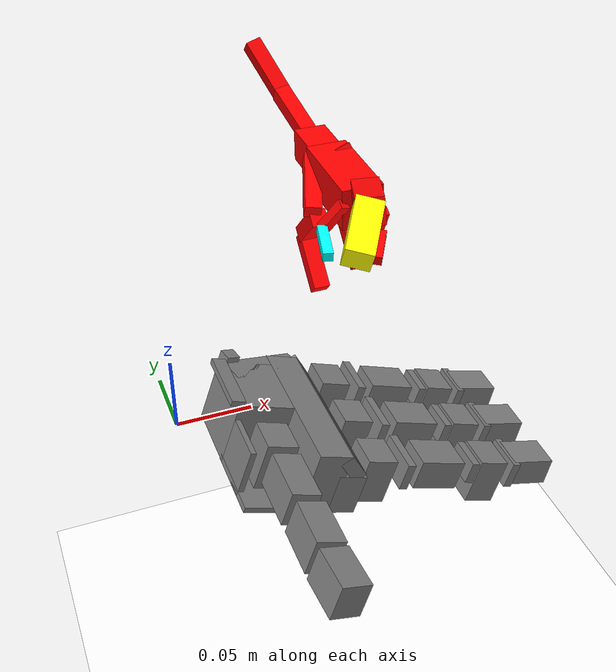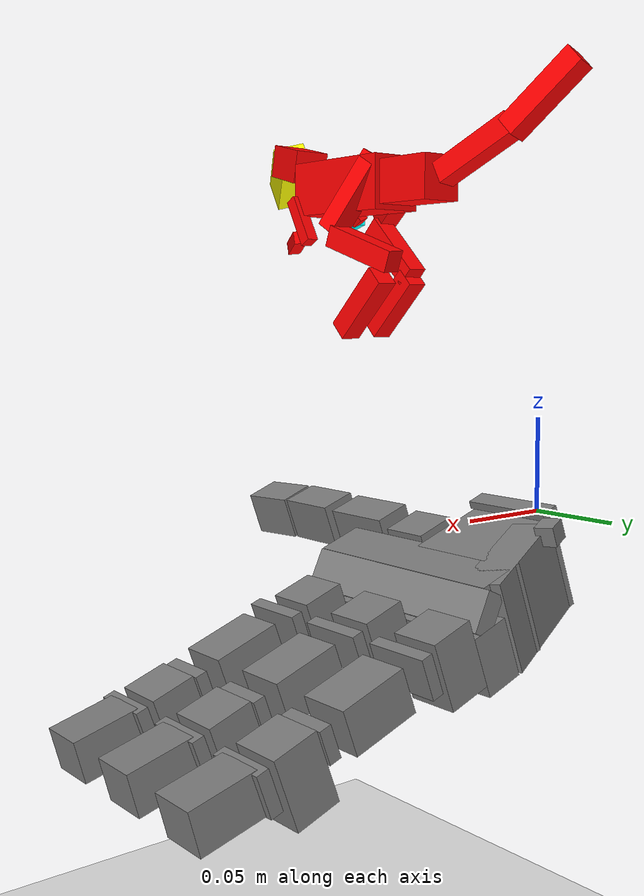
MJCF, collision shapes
<mujoco model="leap_scene">
  <default>
      <mesh maxhullvert="200"/>
  </default>

  <include file="leap_rh_mjx.xml"/>
  <include file="reorientation_allosaurus.xml"/>

  <statistic center="0.15 0 0" extent="0.4" meansize="0.01"/>

  <visual>
    <headlight diffuse=".8 .8 .8" ambient=".2 .2 .2" specular="1 1 1"/>
    <rgba force="1 0 0 1"/>
    <global azimuth="120" elevation="-20"/>
    <map force="0.01" stiffness="500"/>
    <scale forcewidth="0.1" contactwidth="0.5" contactheight="0.2"/>
    <quality shadowsize="8192"/>
  </visual>

  <asset>
    <texture type="skybox" builtin="gradient" rgb1="1 1 1" rgb2="1 1 1" width="800" height="800"/>
    <texture type="2d" name="groundplane" builtin="checker" mark="edge" rgb1="1 1 1" rgb2="1 1 1" markrgb="0 0 0"
      width="300" height="300"/>
    <material name="groundplane" texture="groundplane" texuniform="true" texrepeat="5 5" reflectance="0"/>
  </asset>

  <worldbody>
    <camera name="side" pos="-0.183 0.396 0.296" xyaxes="-0.783 -0.622 -0.000 0.332 -0.419 0.845"/>
    <geom name="floor" pos="0 0 -0.25" size="0 0 0.01" type="plane" material="groundplane" contype="2" conaffinity="2"/>
    <body name="goal" mocap="true" pos="0.325 0.17 0.0475">
    </body>
  </worldbody>

  <sensor>
    <!-- allosaurus. -->
    <framepos name="allosaurus_position" objtype="body" objname="allosaurus"/>
    <framequat name="allosaurus_orientation" objtype="body" objname="allosaurus"/>
    <framelinvel name="allosaurus_linvel" objtype="body" objname="allosaurus"/>
    <frameangvel name="allosaurus_angvel" objtype="body" objname="allosaurus"/>
    <frameangacc name="allosaurus_angacc" objtype="body" objname="allosaurus"/>
    <framezaxis name="allosaurus_upvector" objtype="body" objname="allosaurus"/>

    <!-- hand. -->
    <framepos name="palm_position" objtype="site" objname="grasp_site"/>
    <framepos name="th_tip_position" objtype="site" objname="th_tip" reftype="site" refname="grasp_site"/>
    <framepos name="if_tip_position" objtype="site" objname="if_tip" reftype="site" refname="grasp_site"/>
    <framepos name="mf_tip_position" objtype="site" objname="mf_tip" reftype="site" refname="grasp_site"/>
    <framepos name="rf_tip_position" objtype="site" objname="rf_tip" reftype="site" refname="grasp_site"/>

    <!-- goal. -->
    <framequat name="allosaurus_goal_orientation" objtype="body" objname="goal"/>
    <framezaxis name="allosaurus_goal_upvector" objtype="body" objname="goal"/>
  </sensor>

  <keyframe>
    <key name="home"
      qpos="
      0.8 0 0.8 0.8
      0.8 0 0.8 0.8
      0.8 0 0.8 0.8
      0.8 0.8 0.8 0
      0.1 0.0 0.05 0.810967 -0.00262895 -0.585086 -0.000254303"
      ctrl="
      0.8 0 0.8 0.8
      0.8 0 0.8 0.8
      0.8 0 0.8 0.8
      0.8 0.8 0.8 0" mpos="0.25 0.16 0"
      mquat="1 0 0 0"/>
  </keyframe>
</mujoco>

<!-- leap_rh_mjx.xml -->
<mujoco model="leap_rh">
  <compiler angle="radian" autolimits="true"/>

  <option timestep="0.01" integrator="Euler" iterations="5" ls_iterations="8">
    <flag eulerdamp="disable"/>
  </option>

  <custom>
    <numeric data="30" name="max_contact_points"/>
    <numeric data="12" name="max_geom_pairs"/>
  </custom>

  <asset>
    <material name="black" rgba="0.2 0.2 0.2 1"/>
    <material name="gray" rgba="0.5 0.5 0.5 1"/>
    <mesh name="leap_mount" file="meshes/leap_mount.obj"/>

    <!-- Example path to palm right -->
    <!-- mujoco_playground/external_deps/mujoco_menagerie/leap_hand/assets/palm_right.obj -->
    <!-- original path, incorrect. -->
    <!-- correct path -->
    <mesh name="palm" file="../../../../external_deps/mujoco_menagerie/leap_hand/assets/palm_right.obj"/>
    <mesh name="base" file="../../../../external_deps/mujoco_menagerie/leap_hand/assets/base.obj"/>
    <mesh name="proximal" file="../../../../external_deps/mujoco_menagerie/leap_hand/assets/proximal.obj"/>
    <mesh name="medial" file="../../../../external_deps/mujoco_menagerie/leap_hand/assets/medial.obj"/>
    <mesh name="distal" file="../../../../external_deps/mujoco_menagerie/leap_hand/assets/distal.obj"/>
    <mesh name="tip" file="../../../../external_deps/mujoco_menagerie/leap_hand/assets/tip.obj"/>
    <mesh name="thumb_base" file="../../../../external_deps/mujoco_menagerie/leap_hand/assets/thumb_base.obj"/>
    <mesh name="thumb_proximal" file="../../../../external_deps/mujoco_menagerie/leap_hand/assets/thumb_proximal.obj"/>
    <mesh name="thumb_distal" file="../../../../external_deps/mujoco_menagerie/leap_hand/assets/thumb_distal.obj"/>
    <mesh name="thumb_tip" file="../../../../external_deps/mujoco_menagerie/leap_hand/assets/thumb_tip.obj"/>
  </asset>

  <default>
    <default class="leap_rh">
      <geom group="3" friction="0.2" solref="0.02 1.5" solimp="0.9 0.99 0.001"/>
      <default class="visual">
        <geom group="2" type="mesh" contype="0" conaffinity="0" density="0" material="black"/>
      </default>
      <default class="tip">
        <geom size="0.01 0.012 0.016" pos="-0.0012969 -0.0335524 0.0145207" quat="0.703552 0.709596 -0.0292107 -0.0252203" type="box" friction="0.7 0.05 0.0002" rgba=".5 .5 .5 .3"/>
      </default>
      <default class="thumb_tip">
        <geom size="0.01 0.012 0.016" pos="-0.00127744 -0.0455619 -0.0144774" quat="0.708101 0.705072 -0.0294902 -0.024426" type="box" friction="0.7 0.05 0.0002" rgba=".5 .5 .5 .3"/>
      </default>

      <position kp="3.0" inheritrange="1"/>
      <!-- armature = rotor inertia * gear ratio^2 = 1.7 * 1e-8 * 288*288 = 0.00149376 -->
      <!-- max torque = 0.2196 = 600/1000*0.366 -->
      <!-- frictionloss = rough guess, small ish value -->
      <joint axis="0 0 -1" damping="0.2" armature="0.00149376" actuatorfrcrange="-0.2196 0.2196" frictionloss="0.02"/>

      <default class="mcp">
        <joint range="-0.314 2.23"/>
      </default>
      <default class="rot">
        <joint range="-1.047 1.047"/>
      </default>
      <default class="pip">
        <joint range="-0.506 1.885"/>
      </default>
      <default class="dip">
        <joint range="-0.366 2.042"/>
      </default>
      <default class="thumb_cmc">
        <joint range="-0.349 2.094"/>
      </default>
      <default class="thumb_axl">
        <joint range="-0.349 2.094"/>
      </default>
      <default class="thumb_mcp">
        <joint range="-0.47 2.443"/>
      </default>
      <default class="thumb_ipl">
        <joint range="-1.34 1.88"/>
      </default>

    </default>
  </default>

  <contact>
    <!-- filter the palm from all other finger bodies except the tips -->
    <exclude body1="palm" body2="if_bs"/>
    <exclude body1="palm" body2="mf_bs"/>
    <exclude body1="palm" body2="rf_bs"/>
    <exclude body1="palm" body2="th_mp"/>

    <exclude body1="palm" body2="if_px"/>
    <exclude body1="palm" body2="mf_px"/>
    <exclude body1="palm" body2="rf_px"/>
    <exclude body1="palm" body2="th_bs"/>

    <exclude body1="palm" body2="if_md"/>
    <exclude body1="palm" body2="mf_md"/>
    <exclude body1="palm" body2="rf_md"/>
    <exclude body1="palm" body2="th_px"/>

    <!-- filter the mount from all finger bodies except the tips -->
    <exclude body1="leap_mount" body2="if_bs"/>
    <exclude body1="leap_mount" body2="mf_bs"/>
    <exclude body1="leap_mount" body2="rf_bs"/>
    <exclude body1="leap_mount" body2="th_mp"/>

    <exclude body1="leap_mount" body2="if_px"/>
    <exclude body1="leap_mount" body2="mf_px"/>
    <exclude body1="leap_mount" body2="rf_px"/>
    <exclude body1="leap_mount" body2="th_bs"/>

    <exclude body1="leap_mount" body2="if_md"/>
    <exclude body1="leap_mount" body2="mf_md"/>
    <exclude body1="leap_mount" body2="rf_md"/>
    <exclude body1="leap_mount" body2="th_px"/>

    <!-- none of the base fingertip geoms can touch each other -->
    <exclude body1="if_bs" body2="mf_bs"/>
    <exclude body1="if_bs" body2="rf_bs"/>
    <exclude body1="mf_bs" body2="rf_bs"/>

    <exclude body1="th_mp" body2="if_bs"/>
    <exclude body1="th_mp" body2="mf_bs"/>
    <exclude body1="th_mp" body2="rf_bs"/>
  </contact>

  <worldbody>
    <light name="spotlight" mode="targetbodycom" target="palm" pos="3 0 4"/>
    <body name="leap_mount" pos="0 0 0" quat="1 0 0 0" childclass="leap_rh">
      <geom name="leap_mount_visual" pos="0 0 0" quat="1 0 0 0" class="visual" mesh="leap_mount"/>
      <geom name="leap_mount_collision_0" size="0.002 0.025 0.005" pos="0.0405 0.02 0.009"
        quat="0.57346234 0 0.81923192 0" type="box"/>
      <geom name="leap_mount_collision_1" size="0.005 0.005 0.005" pos="0.05 0.053 0.002"
        quat="0.4987168 0.64994038 -0.34910175 0.45495826" type="box"/>
      <site name="grasp_site" pos="0.11 0.0 0.03" group="4"/>
      <site name="palm_site" pos="0.11 0.0 0.0" group="4"/>
      <body name="palm" pos="0.124 -0.0305 -0.06045" quat="0 1 0 -0.175">
        <inertial pos="-0.049542 -0.042914 -0.010227" quat="0.565586 0.427629 -0.574956 0.408254" mass="0.237"
          diaginertia="0.000407345 0.000304759 0.000180736"/>
        <geom name="palm_visual" pos="-0.02 0.02575 -0.0347" quat="1 0 0 0" class="visual" mesh="palm"/>
        <geom name="palm_collision_1" size="0.011 0.013 0.017" pos="-0.009 0.008 -0.011" type="box"/>
        <geom name="palm_collision_2" size="0.011 0.013 0.017" pos="-0.009 -0.037 -0.011" type="box"/>
        <geom name="palm_collision_3" size="0.011 0.013 0.017" pos="-0.009 -0.082 -0.011" type="box"/>
        <geom name="palm_collision_4" size="0.029 0.01 0.023" pos="-0.066 -0.078 -0.0115" quat="0.989016 0 0 -0.147806" type="box"/>
        <geom name="palm_collision_5" size="0.01 0.06 0.015" pos="-0.03 -0.035 -0.003" type="box"/>
        <geom name="palm_collision_6" size="0.005 0.06 0.01" pos="-0.032 -0.035 -0.024" quat="0.923956 0 0.382499 0" type="box"/>
        <geom name="palm_collision_7" size="0.012 0.058 0.023" pos="-0.048 -0.033 -0.0115" type="box"/>
        <geom name="palm_collision_8" size="0.022 0.026 0.023" pos="-0.078 -0.053 -0.0115" type="box"/>
        <geom name="palm_collision_9" size="0.002 0.018 0.017" pos="-0.098 -0.009 -0.006" type="box"/>
        <geom name="palm_collision_10" size="0.022 0.028 0.002" pos="-0.078 -0.003 0.01" type="box"/>
        <body name="if_bs" pos="-0.007 0.023 -0.0187" quat="0.5 0.5 0.5 -0.5">
          <inertial pos="-0.022516 0.033882 0.016359" quat="0.388092 0.677951 -0.247713 0.573067" mass="0.044"
            diaginertia="1.74972e-05 1.61504e-05 7.21342e-06"/>
          <joint name="if_mcp" class="mcp"/>
          <geom name="if_bs_visual" pos="0.0084 0.0077 0.01465" quat="1 0 0 0" class="visual" mesh="base"/>
          <geom name="if_bs_collision_1" size="0.01 0.003 0.017" pos="0 0.018 0.0147" type="box"/>
          <body name="if_px" pos="-0.0122 0.0381 0.0145" quat="0.500003 -0.5 -0.499997 0.5">
            <inertial pos="0.0075 -0.0002 -0.011" quat="0 0.707107 0 0.707107" mass="0.032"
              diaginertia="4.8853e-06 4.3733e-06 3.0933e-06"/>
            <joint name="if_rot" class="rot"/>
            <geom name="if_px_visual" pos="0.0096 0.0002 0.0007" quat="0.500003 -0.5 -0.5 -0.499997" class="visual"
              mesh="proximal"/>
            <geom name="if_px_collision" size="0.017 0.013 0.011" pos="0.0075 -0.0002 -0.011" type="box"/>

            <body name="if_md" pos="0.015 0.0143 -0.013" quat="0.500003 0.5 -0.5 0.499997">
              <inertial pos="0.0054215 -0.029148 0.015" quat="0.687228 0.687228 0.166487 0.166487" mass="0.037"
                diaginertia="8.28004e-06 8.1598e-06 5.39516e-06"/>
              <joint name="if_pip" class="pip"/>
              <geom name="if_md_visual" pos="0.0211 -0.0084 0.0097" quat="2.67949e-08 -1 0 0" class="visual"
                mesh="medial"/>
              <geom name="if_md_collision_1" size="0.008 0.003 0.013" pos="0 -0.02 0.015" type="box"/>
              <geom name="if_md_collision_5" size="0.017 0.011 0.013" pos="0.0075 -0.035 0.015" type="box"/>
              <body name="if_ds" pos="0 -0.0361 0.0002">
                <inertial pos="-0.0008794 -0.027019 0.014594" quat="0.702905 0.710643 -0.0212937 -0.0214203"
                  mass="0.016" diaginertia="3.71863e-06 3.02396e-06 1.6518e-06"/>
                <joint name="if_dip" class="dip"/>
                <geom name="if_ds_visual" pos="0.0132 -0.0061 0.0144" quat="2.67949e-08 1 0 0" class="visual"
                  mesh="distal"/>
                <geom name="if_ds_collision_1" size="0.01 0.003 0.015" pos="0 -0.017 0.015" type="box"/>
                <geom name="if_tip" class="tip"/>
                <geom type="mesh" mesh="tip" class="visual" material="gray"/>
                <site name="if_tip" pos="0 -0.05 0.015" group="4"/>
              </body>
            </body>
          </body>
        </body>
        <body name="mf_bs" pos="-0.0071 -0.0224 -0.0187" quat="0.500003 0.5 0.5 -0.499997">
          <inertial pos="-0.022516 0.033882 0.016359" quat="0.388092 0.677951 -0.247713 0.573067" mass="0.044"
            diaginertia="1.74972e-05 1.61504e-05 7.21342e-06"/>
          <joint name="mf_mcp" class="mcp"/>
          <geom name="mf_bs_visual" pos="0.0084 0.0077 0.01465" quat="1 0 0 0" class="visual" mesh="base"/>
          <geom name="mf_bs_collision_1" size="0.01 0.003 0.017" pos="0 0.018 0.0147" type="box"/>
          <body name="mf_px" pos="-0.0122 0.0381 0.0145" quat="0.500003 -0.5 -0.499997 0.5">
            <inertial pos="0.0075 -0.0002 -0.011" quat="0 0.707107 0 0.707107" mass="0.032"
              diaginertia="4.8853e-06 4.3733e-06 3.0933e-06"/>
            <joint name="mf_rot" class="rot"/>
            <geom name="mf_px_visual" pos="0.0096 0.0003 0.0007" quat="0.500003 -0.5 -0.5 -0.499997" class="visual"
              mesh="proximal"/>
            <geom name="mf_px_collision" size="0.017 0.013 0.011" pos="0.0075 -0.0002 -0.011" type="box"/>
            <body name="mf_md" pos="0.015 0.0143 -0.013" quat="0.500003 0.5 -0.5 0.499997">
              <inertial pos="0.0054215 -0.029148 0.015" quat="0.687228 0.687228 0.166487 0.166487" mass="0.037"
                diaginertia="8.28004e-06 8.1598e-06 5.39516e-06"/>
              <joint name="mf_pip" class="pip"/>
              <geom name="mf_md_visual" pos="0.0211 -0.0084 0.0097" quat="1.32679e-06 -1 0 0" class="visual"
                mesh="medial"/>
              <geom name="mf_md_collision_1" size="0.008 0.003 0.013" pos="0 -0.02 0.015" type="box"/>
              <geom name="mf_md_collision_5" size="0.017 0.011 0.013" pos="0.0075 -0.035 0.015" type="box"/>
              <body name="mf_ds" pos="0 -0.0361 0.0002">
                <inertial pos="-0.0008794 -0.027019 0.014594" quat="0.702905 0.710643 -0.0212937 -0.0214203"
                  mass="0.016" diaginertia="3.71863e-06 3.02396e-06 1.6518e-06"/>
                <joint name="mf_dip" class="dip"/>
                <geom name="mf_ds_visual" pos="0.0132 -0.0061 0.0145" quat="1.32679e-06 1 0 0" class="visual"
                  mesh="distal"/>
                <geom name="mf_ds_collision_1" size="0.01 0.003 0.015" pos="0 -0.017 0.015" type="box"/>
                <geom name="mf_tip" class="tip"/>
                <geom type="mesh" mesh="tip" class="visual" material="gray"/>
                <site name="mf_tip" pos="0 -0.05 0.015" group="4"/>
              </body>
            </body>
          </body>
        </body>
        <body name="rf_bs" pos="-0.00709 -0.0678 -0.0187" quat="0.500003 0.5 0.5 -0.499997">
          <inertial pos="-0.022516 0.033882 0.016359" quat="0.388092 0.677951 -0.247713 0.573067" mass="0.044"
            diaginertia="1.74972e-05 1.61504e-05 7.21342e-06"/>
          <joint name="rf_mcp" class="mcp"/>
          <geom name="rf_bs_visual" pos="0.0084 0.0077 0.01465" quat="1 0 0 0" class="visual" mesh="base"/>
          <geom name="rf_bs_collision_1" size="0.01 0.003 0.017" pos="0 0.018 0.0147" type="box"/>
          <body name="rf_px" pos="-0.0122 0.0381 0.0145" quat="0.500003 -0.5 -0.499997 0.5">
            <inertial pos="0.0075 -0.0002 -0.011" quat="0 0.707107 0 0.707107" mass="0.032"
              diaginertia="4.8853e-06 4.3733e-06 3.0933e-06"/>
            <joint name="rf_rot" class="rot"/>
            <geom name="rf_px_visual" pos="0.0096 0.0003 0.0007" quat="0.500003 -0.5 -0.5 -0.499997" class="visual"
              mesh="proximal"/>
            <geom name="rf_px_collision" size="0.017 0.013 0.011" pos="0.0075 -0.0002 -0.011" type="box"/>
            <body name="rf_md" pos="0.015 0.0143 -0.013" quat="0.500003 0.5 -0.5 0.499997">
              <inertial pos="0.0054215 -0.029148 0.015" quat="0.687228 0.687228 0.166487 0.166487" mass="0.037"
                diaginertia="8.28004e-06 8.1598e-06 5.39516e-06"/>
              <joint name="rf_pip" class="pip"/>
              <geom name="rf_md_visual" pos="0.0211 -0.0084 0.0097" quat="0 -1 0 0" class="visual" mesh="medial"/>
              <geom name="rf_md_collision_1" size="0.008 0.003 0.013" pos="0 -0.02 0.015" type="box"/>
              <geom name="rf_md_collision_5" size="0.017 0.011 0.013" pos="0.0075 -0.035 0.015" type="box"/>
              <body name="rf_ds" pos="0 -0.03609 0.0002">
                <inertial pos="-0.0008794 -0.027019 0.014594" quat="0.702905 0.710643 -0.0212937 -0.0214203"
                  mass="0.016" diaginertia="3.71863e-06 3.02396e-06 1.6518e-06"/>
                <joint name="rf_dip" class="dip"/>
                <geom name="rf_ds_visual" pos="0.0132 -0.0061 0.0145" quat="0 1 0 0" class="visual" mesh="distal"/>
                <geom name="rf_ds_collision_1" size="0.01 0.003 0.015" pos="0 -0.017 0.015" type="box"/>
                <geom name="rf_tip" class="tip"/>
                <geom type="mesh" mesh="tip" class="visual" material="gray"/>
                <site name="rf_tip" pos="0 -0.05 0.015" group="4"/>
              </body>
            </body>
          </body>
        </body>
        <body name="th_mp" pos="-0.0693 -0.0012 -0.0216" quat="0.707109 0 0.707105 0">
          <inertial pos="0.0075 -0.0002 -0.011" quat="0 0.707107 0 0.707107" mass="0.032"
            diaginertia="4.8853e-06 4.3733e-06 3.0933e-06"/>
          <joint name="th_cmc" class="thumb_cmc"/>
          <geom name="th_mp_visual" pos="-0.0053 0.0003 0.00078" quat="0.500003 -0.5 -0.5 -0.499997" class="visual"
            mesh="proximal"/>
          <geom name="th_mp_collision" size="0.017 0.013 0.011" pos="-0.0075 -0.0002 -0.011" type="box"/>
          <body name="th_bs" pos="0 0.0143 -0.013" quat="0.500003 0.5 -0.5 0.499997">
            <inertial pos="0 0 -0.0070806" quat="0.707107 0.707107 0 0" mass="0.003"
              diaginertia="6.1932e-07 5.351e-07 2.1516e-07"/>
            <joint name="th_axl" class="thumb_axl"/>
            <geom name="th_bs_collision_1" pos="0.01196 0 -0.0158" quat="0.707109 0.707105 0 0" class="visual" mesh="thumb_base"/>
            <body name="th_px" pos="0 0.0145 -0.017" quat="0.707109 -0.707105 0 0">
              <inertial pos="-0.0020593 0.015912 -0.013733" quat="0.698518 0.697382 -0.104933 0.121324" mass="0.038"
                diaginertia="9.87104e-06 9.32653e-06 4.36203e-06"/>
              <joint name="th_mcp" class="thumb_mcp"/>
              <geom name="th_px_visual" pos="0.0439 0.0579 -0.0086" quat="1 0 0 0" class="visual" mesh="thumb_proximal"/>
              <geom name="th_px_collision_1" size="0.01 0.02 0.012" pos="0 0.0105 -0.014" type="box"/>
              <body name="th_ds" pos="0 0.0466 0.0002" quat="1.32679e-06 0 0 1">
                <inertial pos="0.00096191 -0.024203 -0.014419" quat="0.35287 0.311272 -0.632839 0.614904" mass="0.049"
                  diaginertia="2.08591e-05 2.0402e-05 4.71335e-06"/>
                <joint name="th_ipl" class="thumb_ipl"/>
                <geom name="th_ds_visual" pos="0.0625 0.0784 0.0489" quat="1 0 0 0" class="visual" mesh="thumb_distal"/>
                <geom name="th_ds_collision_1" size="0.01 0.018 0.012" pos="0 -0.0085 -0.015" type="box"/>
                <geom name="th_tip" class="thumb_tip"/>
                <site name="th_tip" pos="0 -0.06 -0.015" group="4"/>
                <geom type="mesh" mesh="thumb_tip" class="visual" material="gray"/>
              </body>
            </body>
          </body>
        </body>
      </body>
    </body>
  </worldbody>

  <actuator>
    <position name="if_mcp_act" joint="if_mcp" class="mcp"/>
    <position name="if_rot_act" joint="if_rot" class="rot"/>
    <position name="if_pip_act" joint="if_pip" class="pip"/>
    <position name="if_dip_act" joint="if_dip" class="dip"/>
    <position name="mf_mcp_act" joint="mf_mcp" class="mcp"/>
    <position name="mf_rot_act" joint="mf_rot" class="rot"/>
    <position name="mf_pip_act" joint="mf_pip" class="pip"/>
    <position name="mf_dip_act" joint="mf_dip" class="dip"/>
    <position name="rf_mcp_act" joint="rf_mcp" class="mcp"/>
    <position name="rf_rot_act" joint="rf_rot" class="rot"/>
    <position name="rf_pip_act" joint="rf_pip" class="pip"/>
    <position name="rf_dip_act" joint="rf_dip" class="dip"/>
    <position name="th_cmc_act" joint="th_cmc" class="thumb_cmc"/>
    <position name="th_axl_act" joint="th_axl" class="thumb_axl"/>
    <position name="th_mcp_act" joint="th_mcp" class="thumb_mcp"/>
    <position name="th_ipl_act" joint="th_ipl" class="thumb_ipl"/>
  </actuator>
</mujoco>

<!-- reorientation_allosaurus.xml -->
<mujoco model="model">
  <asset>
  </asset>
  <worldbody>
    <body name="allosaurus" pos="0.11 0.0 0.1" quat="1 0 0 0">
      <freejoint name="allosaurus_freejoint"/>
      <site name="allosaurus_center" pos="0 -0.025 0.06" group="0" size="0.005" rgba="1 0 0 0.5"/>
      <geom name="body_center" type="box" pos="0 -0.02 0.065" size="0.0125 0.03 0.0125" rgba="1 0 0 0.5"/>
      <geom name="neck" type="box" pos="-0.005 -0.07 0.08" euler="-0.2 0 -0.3" size="0.008 0.0175 0.008" rgba="1 0 0 0.5"/>
      <geom name="head" type="box" pos="-0.018 -0.095 0.077" euler="0.5 0 -0.5" size="0.008 0.0175 0.008" rgba="1 1 0 0.5"/>
      <body name="tail" pos="0 -0.02 0.065">
        <geom name="tail_1" type="box" pos="0 0.04 0" size="0.01 0.02 0.01" rgba="1 0 0 0.5"/>
        <geom name="tail_2" type="box" pos="-0.002 0.08 0.01" euler="0.5 0 0.2" size="0.005 0.02 0.005" rgba="1 0 0 0.5"/>
        <geom name="tail_3" type="box" pos="-0.01 0.11 0.03" euler="0.8 0 0.3" size="0.005 0.02 0.005" rgba="1 0 0 0.5"/>
      </body>

      <body name="left_leg">
        <geom name="left_thigh" type="box" pos="0.0125 -0.005 0.06" euler="-0.5 -0.3 0" size="0.005 0.005 0.02" rgba="1 0 0 0.5"/>
        <geom name="left_calf" type="box" pos="0.015 0.005 0.035" euler="1.2 0.2 0" size="0.005 0.005 0.018" rgba="1 0 0 0.5"/>
        <geom name="left_foot" type="box" pos="0.015 0.005 0.01" euler="-0.8 0.0 0" size="0.005 0.005 0.018" rgba="1 0 0 0.5"/>
      </body>

      <body name="right_leg" pos="-0.027 0 0">
        <geom name="right_thigh" type="box" pos="0.0125 -0.005 0.06" euler="-1.1 0.3 0" size="0.005 0.005 0.02" rgba="1 0 0 0.5"/>
        <geom name="right_calf" type="box" pos="0.01 -0.01 0.035" euler="0.8 0 0" size="0.005 0.005 0.018" rgba="1 0 0 0.5"/>
        <geom name="right_foot" type="box" pos="0.01 -0.01 0.01" euler="-0.8 0 0" size="0.005 0.005 0.018" rgba="1 0 0 0.5"/>
      </body>

      <body name="right_arm" pos="0.0 -0.05 0.06">
        <geom name="right_arm_1" type="box" pos="-0.016 0.005 0" euler="0.5 0.4 0" size="0.003 0.003 0.012" rgba="1 0 0 0.5"/>
        <geom name="right_arm_2" type="box" pos="-0.025 -0.005 -0.01" euler="0.2 0 -0.2" size="0.003 0.012 0.003" rgba="0 1 1 0.5"/>
      </body>

      <body name="left_arm" pos="0.03 -0.05 0.05">
        <geom name="left_arm_1" type="box" pos="-0.018 0.005 0" euler="0.5 0 0" size="0.003 0.003 0.012" rgba="1 0 0 0.5"/>
        <geom name="left_arm_2" type="box" pos="-0.022 -0.005 -0.01" euler="0.2 0 -0.5" size="0.003 0.012 0.003" rgba="1 0 0 0.5"/>
      </body>

    </body>
  </worldbody>
</mujoco>
